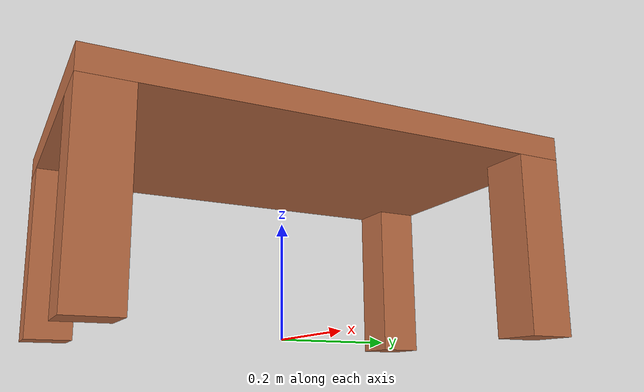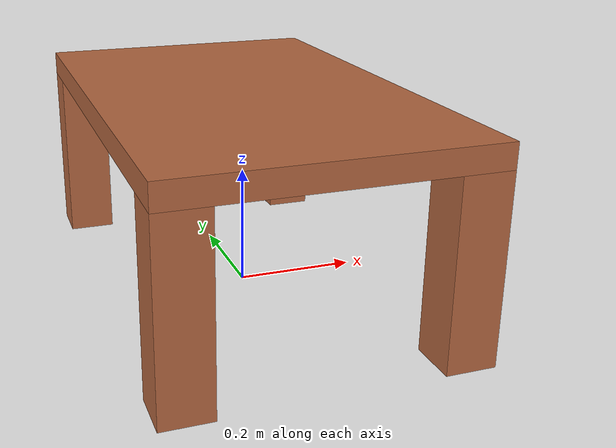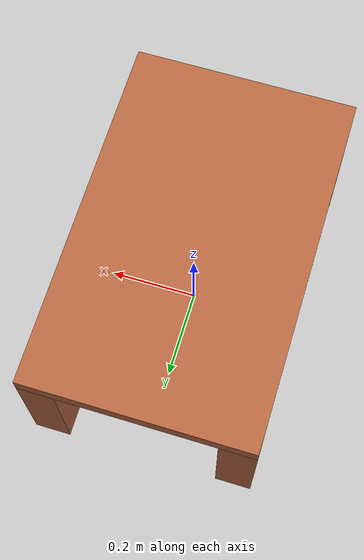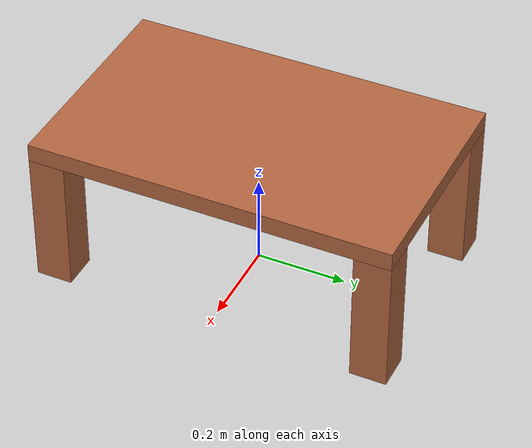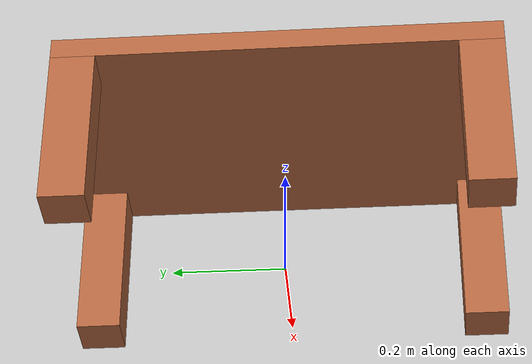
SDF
<?xml version="1.0"?>
<sdf version="1.6">
  <model name="coffee_table">
    <link name="1_link">
      <collision name="1_col">
        <geometry>
          <box>
            <size>0.5 0.8 0.04</size>
          </box>
        </geometry>
      </collision>
      <visual name="1_vis">
        <geometry>
          <box>
            <size>0.5 0.8 0.04</size>
          </box>
        </geometry>
        <material>
          <ambient>0.7 0.4 0.25 1</ambient>
        </material>
      </visual>
      <pose>0 0 0.32 0 0 0</pose>
    </link>
    <link name="2_link">
      <collision name="2_col">
        <geometry>
          <box>
            <size>0.08 0.08 0.3</size>
          </box>
        </geometry>
      </collision>
      <visual name="2_vis">
        <geometry>
          <box>
            <size>0.08 0.08 0.3</size>
          </box>
        </geometry>
        <material>
          <ambient>0.7 0.4 0.25 1</ambient>
        </material>
      </visual>
      <pose>-0.21 -0.36 0.15 0 0 0</pose>
    </link>
    <link name="3_link">
      <collision name="3_col">
        <geometry>
          <box>
            <size>0.08 0.08 0.3</size>
          </box>
        </geometry>
      </collision>
      <visual name="3_vis">
        <geometry>
          <box>
            <size>0.08 0.08 0.3</size>
          </box>
        </geometry>
        <material>
          <ambient>0.7 0.4 0.25 1</ambient>
        </material>
      </visual>
      <pose>-0.21 0.36 0.15 0 0 0</pose>
    </link>
    <link name="4_link">
      <collision name="4_col">
        <geometry>
          <box>
            <size>0.08 0.08 0.3</size>
          </box>
        </geometry>
      </collision>
      <visual name="4_vis">
        <geometry>
          <box>
            <size>0.08 0.08 0.3</size>
          </box>
        </geometry>
        <material>
          <ambient>0.7 0.4 0.25 1</ambient>
        </material>
      </visual>
      <pose>0.21 0.36 0.15 0 0 0</pose>
    </link>
    <link name="5_link">
      <collision name="5_col">
        <geometry>
          <box>
            <size>0.08 0.08 0.3</size>
          </box>
        </geometry>
      </collision>
      <visual name="5_vis">
        <geometry>
          <box>
            <size>0.08 0.08 0.3</size>
          </box>
        </geometry>
        <material>
          <ambient>0.7 0.4 0.25 1</ambient>
        </material>
      </visual>
      <pose>0.21 -0.36 0.15 0 0 0</pose>
    </link>
    <static>true</static>
  </model>
</sdf>
